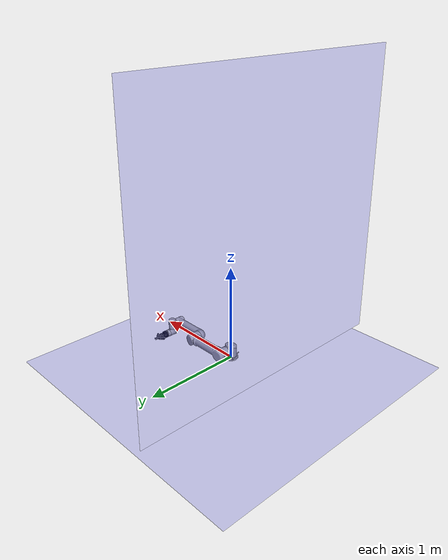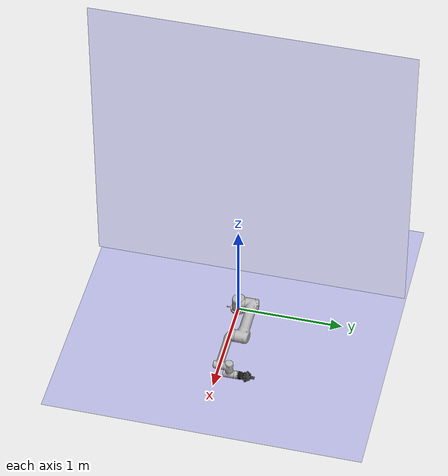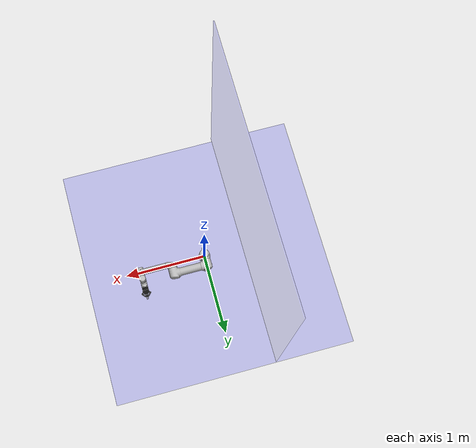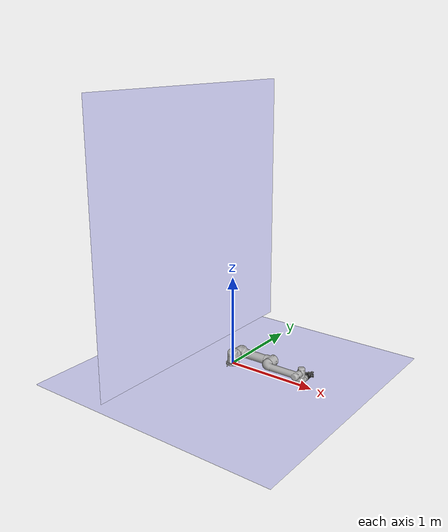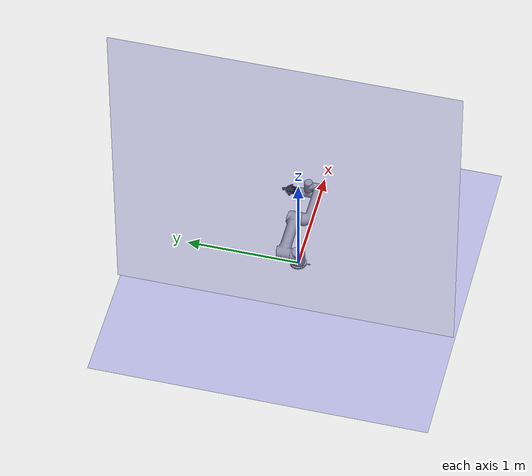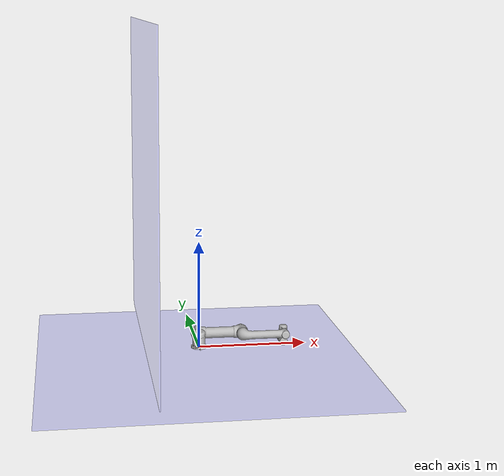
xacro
<?xml version="1.0"?>
<robot xmlns:xacro="http://ros.org/wiki/xacro"
       name="ur5" >

  <!-- common stuff -->
  <xacro:include filename="$(find ur_description)/urdf/common.gazebo.xacro" />

  <!-- ur5 -->
  <xacro:include filename="$(find ur_description)/urdf/ur5.urdf.xacro" />

  <!-- arm -->
  <xacro:ur5_robot prefix="" joint_limited="false"/>

  <link name="world" />

  <joint name="world_joint" type="fixed">
    <parent link="world" />
    <child link = "base_link" />
    <origin xyz="0.0 0.0 0.0" rpy="0.0 0.0 0.0" />
  </joint>

  <!-- Floor -->
  <link name="floor">
    <collision>
      <origin xyz="0.0 0.0 0.0" rpy="0.0 0.0 0.0" />
      <geometry>
        <box size="3 3 0.01"/>
      </geometry>
    </collision>
    <visual>
      <geometry>
        <box size="3 3 0.01"/>
      </geometry>
      <material name="transparent_blue">
        <color rgba="0 0 0.8 0.02"/>
      </material>
    </visual>
  </link>
  <joint name="world_to_floor" type="fixed">
    <origin xyz="0 0 -0.1" rpy="0 0 0" />
    <parent link="world"/>
    <child link = "floor" />
  </joint>

  <!-- Back wall -->
  <link name="back_wall">
    <collision>
      <origin xyz="0.0 0.0 0.0" rpy="0.0 0.0 0.0" />
      <geometry>
        <box size="0.01 3 3"/>
      </geometry>
    </collision>
    <visual>
      <geometry>
        <box size="0.01 3 3"/>
      </geometry>
      <material name="transparent_blue">
        <color rgba="0 0 0.8 0.02"/>
      </material>
    </visual>
  </link>
  <joint name="world_to_back_wall" type="fixed">
    <origin xyz="-0.5 0 1.5" rpy="0 0 0" />
    <parent link="world"/>
    <child link = "back_wall" />
  </joint>

  <!-- attach Temoto frame -->
  <!-- A tool link that will serve as the base end effector, instead of tool0. -->
  <link name="temoto_end_effector" />
  <joint name="ur5-temoto" type="fixed" >
    <origin xyz="0.15 0.0 0.0" rpy="0 0 0"/>
    <parent link="ee_link" />	<!-- end-effector link for UR5 -->
    <child link="temoto_end_effector" />
  </joint>

   <!-- attach gripper. Z is up -->
  <joint name="hand_attach_joint" type="fixed">
    <parent link= "ee_link" />
    <child link = "2_finger_85_gripper_link" />
    <origin xyz="0.09 0 0" rpy="0 0 -1.571" />
  </joint>

  <link name="2_finger_85_gripper_link">
      <visual>
        <origin xyz="0 0 0" rpy="0 0 0" />
        <geometry>
          <mesh filename="package://temoto_support/meshes/2_finger_85_gripper_urdf.stl" scale="0.001 0.001 0.001"/>
        </geometry>
        <material name="black">
          <color rgba="0.05 0.05 0.05 1"/>
        </material>
      </visual>
      <collision>
        <origin xyz="0.0 0.0 0.0" rpy="0.0 0.0 0.0" />
        <geometry>
          <mesh filename="package://temoto_support/meshes/2_finger_85_gripper_urdf.stl" scale="0.00105 0.00105 0.00105"/>
        </geometry>
      </collision>
  </link>

</robot>

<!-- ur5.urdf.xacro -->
<robot xmlns:xacro="http://ros.org/wiki/xacro">

  <xacro:include filename="$(find ur_description)/urdf/ur.transmission.xacro" />
  <xacro:include filename="$(find ur_description)/urdf/ur.gazebo.xacro" />

  <xacro:property name="pi" value="3.14159265" />

  <!-- Inertia parameters -->
  <xacro:property name="base_mass" value="4.0" />  <!-- This mass might be incorrect -->
  <xacro:property name="shoulder_mass" value="3.7000" />
  <xacro:property name="upper_arm_mass" value="8.3930" />
  <xacro:property name="forearm_mass" value="2.2750" />
  <xacro:property name="wrist_1_mass" value="1.2190" />
  <xacro:property name="wrist_2_mass" value="1.2190" />
  <xacro:property name="wrist_3_mass" value="0.1879" />

  <xacro:property name="shoulder_cog" value="0.0 0.00193 -0.02561" />
  <xacro:property name="upper_arm_cog" value="0.0 -0.024201 0.2125" />
  <xacro:property name="forearm_cog" value="0.0 0.0265 0.11993" />
  <xacro:property name="wrist_1_cog" value="0.0 0.110949 0.01634" />
  <xacro:property name="wrist_2_cog" value="0.0 0.0018 0.11099" />
  <xacro:property name="wrist_3_cog" value="0.0 0.001159 0.0" />

  <!-- Kinematic model -->
  <!-- Properties from urcontrol.conf -->
  <xacro:property name="ur5_d1" value="0.089159" />
  <xacro:property name="ur5_a2" value="-0.42500" />
  <xacro:property name="ur5_a3" value="-0.39225" />
  <xacro:property name="ur5_d4" value="0.10915" />
  <xacro:property name="ur5_d5" value="0.09465" />
  <xacro:property name="ur5_d6" value="0.0823" />

  <!-- Arbitrary offsets for shoulder/elbow joints -->
  <xacro:property name="shoulder_offset" value="0.13585" />  <!-- measured from model -->
  <xacro:property name="elbow_offset" value="-0.1197" /> <!-- measured from model -->

  <!-- link lengths used in model -->
  <xacro:property name="shoulder_height" value="${ur5_d1}" />
  <xacro:property name="upper_arm_length" value="${-ur5_a2}" />
  <xacro:property name="forearm_length" value="${-ur5_a3}" />
  <xacro:property name="wrist_1_length" value="${ur5_d4 - elbow_offset - shoulder_offset}" />
  <xacro:property name="wrist_2_length" value="${ur5_d5}" />
  <xacro:property name="wrist_3_length" value="${ur5_d6}" />
  <!--property name="shoulder_height" value="0.089159" /-->
  <!--property name="shoulder_offset" value="0.13585" /-->  <!-- shoulder_offset - elbow_offset + wrist_1_length = 0.10915 -->
  <!--property name="upper_arm_length" value="0.42500" /-->
  <!--property name="elbow_offset" value="0.1197" /-->       <!-- CAD measured -->
  <!--property name="forearm_length" value="0.39225" /-->
  <!--property name="wrist_1_length" value="0.093" /-->     <!-- CAD measured -->
  <!--property name="wrist_2_length" value="0.09465" /-->   <!-- In CAD this distance is 0.930, but in the spec it is 0.09465 -->
  <!--property name="wrist_3_length" value="0.0823" /-->

  <xacro:property name="shoulder_radius" value="0.060" />   <!-- manually measured -->
  <xacro:property name="upper_arm_radius" value="0.054" />  <!-- manually measured -->
  <xacro:property name="elbow_radius" value="0.060" />      <!-- manually measured -->
  <xacro:property name="forearm_radius" value="0.040" />    <!-- manually measured -->
  <xacro:property name="wrist_radius" value="0.045" />      <!-- manually measured -->

  <xacro:macro name="cylinder_inertial" params="radius length mass *origin">
    <inertial>
      <mass value="${mass}" />
      <xacro:insert_block name="origin" />
      <inertia ixx="${0.0833333 * mass * (3 * radius * radius + length * length)}" ixy="0.0" ixz="0.0"
        iyy="${0.0833333 * mass * (3 * radius * radius + length * length)}" iyz="0.0"
        izz="${0.5 * mass * radius * radius}" />
    </inertial>
  </xacro:macro>

  <xacro:macro name="ur5_robot" params="prefix joint_limited">

    <link name="${prefix}base_link" >
      <visual>
        <geometry>
          <mesh filename="package://ur_description/meshes/ur5/visual/base.dae" />
        </geometry>
        <material name="LightGrey">
          <color rgba="0.7 0.7 0.7 1.0"/>
        </material>
      </visual>
      <collision>
        <geometry>
          <mesh filename="package://ur_description/meshes/ur5/collision/base.stl" scale="1.05 1.05 1.05"/>
        </geometry>
      </collision>
      <xacro:cylinder_inertial radius="0.06" length="0.05" mass="${base_mass}">
        <origin xyz="0.0 0.0 0.0" rpy="0 0 0" />
      </xacro:cylinder_inertial>
    </link>

    <joint name="${prefix}shoulder_pan_joint" type="revolute">
      <parent link="${prefix}base_link" />
      <child link = "${prefix}shoulder_link" />
      <origin xyz="0.0 0.0 ${shoulder_height}" rpy="0.0 0.0 0.0" />
      <axis xyz="0 0 1" />
      <xacro:unless value="${joint_limited}">
        <limit lower="${-2.0 * pi}" upper="${2.0 * pi}" effort="150.0" velocity="3.15"/>
      </xacro:unless>
      <xacro:if value="${joint_limited}">
        <limit lower="${-pi}" upper="${pi}" effort="150.0" velocity="3.15"/>
      </xacro:if>
      <dynamics damping="0.0" friction="0.0"/>
    </joint>

    <link name="${prefix}shoulder_link">
      <visual>
        <geometry>
          <mesh filename="package://ur_description/meshes/ur5/visual/shoulder.dae" />
        </geometry>
        <material name="LightGrey">
          <color rgba="0.7 0.7 0.7 1.0"/>
        </material>
      </visual>
      <collision>
        <geometry>
          <mesh filename="package://ur_description/meshes/ur5/collision/shoulder.stl" scale="1.05 1.05 1.05" />
        </geometry>
      </collision>
      <xacro:cylinder_inertial radius="0.06" length="0.15" mass="${shoulder_mass}">
        <origin xyz="0.0 0.0 0.0" rpy="0 0 0" />
      </xacro:cylinder_inertial>
    </link>

    <joint name="${prefix}shoulder_lift_joint" type="revolute">
      <parent link="${prefix}shoulder_link" />
      <child link = "${prefix}upper_arm_link" />
      <origin xyz="0.0 ${shoulder_offset} 0.0" rpy="0.0 ${pi / 2.0} 0.0" />
      <axis xyz="0 1 0" />
      <xacro:unless value="${joint_limited}">
        <limit lower="${-2.0 * pi}" upper="${2.0 * pi}" effort="150.0" velocity="3.15"/>
      </xacro:unless>
      <xacro:if value="${joint_limited}">
        <limit lower="${-pi}" upper="${pi}" effort="150.0" velocity="3.15"/>
      </xacro:if>
      <dynamics damping="0.0" friction="0.0"/>
    </joint>

    <link name="${prefix}upper_arm_link">
      <visual>
        <geometry>
          <mesh filename="package://ur_description/meshes/ur5/visual/upperarm.dae" />
        </geometry>
        <material name="LightGrey">
          <color rgba="0.7 0.7 0.7 1.0"/>
        </material>
      </visual>
      <collision>
        <geometry>
          <mesh filename="package://ur_description/meshes/ur5/collision/upperarm.stl" scale="1.05 1.05 1.05" />
        </geometry>
      </collision>
      <xacro:cylinder_inertial radius="0.06" length="0.56" mass="${upper_arm_mass}">
        <origin xyz="0.0 0.0 0.28" rpy="0 0 0" />
      </xacro:cylinder_inertial>
    </link>

    <joint name="${prefix}elbow_joint" type="revolute">
      <parent link="${prefix}upper_arm_link" />
      <child link = "${prefix}forearm_link" />
      <origin xyz="0.0 ${elbow_offset} ${upper_arm_length}" rpy="0.0 0.0 0.0" />
      <axis xyz="0 1 0" />
      <xacro:unless value="${joint_limited}">
        <limit lower="${-2.0 * pi}" upper="${2.0 * pi}" effort="150.0" velocity="3.15"/>
      </xacro:unless>
      <xacro:if value="${joint_limited}">
        <limit lower="${-pi}" upper="${pi}" effort="150.0" velocity="3.15"/>
      </xacro:if>
      <dynamics damping="0.0" friction="0.0"/>
    </joint>

    <link name="${prefix}forearm_link">
      <visual>
        <geometry>
          <mesh filename="package://ur_description/meshes/ur5/visual/forearm.dae" />
        </geometry>
        <material name="LightGrey">
          <color rgba="0.7 0.7 0.7 1.0"/>
        </material>
      </visual>
      <collision>
        <geometry>
          <mesh filename="package://ur_description/meshes/ur5/collision/forearm.stl" scale="1.05 1.05 1.05" />
        </geometry>
      </collision>
      <xacro:cylinder_inertial radius="0.06" length="0.5" mass="${forearm_mass}">
        <origin xyz="0.0 0.0 0.25" rpy="0 0 0" />
      </xacro:cylinder_inertial>
    </link>

    <joint name="${prefix}wrist_1_joint" type="revolute">
      <parent link="${prefix}forearm_link" />
      <child link = "${prefix}wrist_1_link" />
      <origin xyz="0.0 0.0 ${forearm_length}" rpy="0.0 ${pi / 2.0} 0.0" />
      <axis xyz="0 1 0" />
      <xacro:unless value="${joint_limited}">
        <limit lower="${-2.0 * pi}" upper="${2.0 * pi}" effort="28.0" velocity="3.2"/>
      </xacro:unless>
      <xacro:if value="${joint_limited}">
        <limit lower="${-pi}" upper="${pi}" effort="28.0" velocity="3.2"/>
      </xacro:if>
      <dynamics damping="0.0" friction="0.0"/>
    </joint>

    <link name="${prefix}wrist_1_link">
      <visual>
        <geometry>
          <mesh filename="package://ur_description/meshes/ur5/visual/wrist1.dae" />
        </geometry>
        <material name="LightGrey">
          <color rgba="0.7 0.7 0.7 1.0"/>
        </material>
      </visual>
      <collision>
        <geometry>
          <mesh filename="package://ur_description/meshes/ur5/collision/wrist1.stl" scale="1.05 1.05 1.05" />
        </geometry>
      </collision>
      <xacro:cylinder_inertial radius="0.6" length="0.12" mass="${wrist_1_mass}">
        <origin xyz="0.0 0.0 0.0" rpy="0 0 0" />
      </xacro:cylinder_inertial>
    </link>

    <joint name="${prefix}wrist_2_joint" type="revolute">
      <parent link="${prefix}wrist_1_link" />
      <child link = "${prefix}wrist_2_link" />
      <origin xyz="0.0 ${wrist_1_length} 0.0" rpy="0.0 0.0 0.0" />
      <axis xyz="0 0 1" />
      <xacro:unless value="${joint_limited}">
        <limit lower="${-2.0 * pi}" upper="${2.0 * pi}" effort="28.0" velocity="3.2"/>
      </xacro:unless>
      <xacro:if value="${joint_limited}">
        <limit lower="${-pi}" upper="${pi}" effort="28.0" velocity="3.2"/>
      </xacro:if>
      <dynamics damping="0.0" friction="0.0"/>
    </joint>

    <link name="${prefix}wrist_2_link">
      <visual>
        <geometry>
          <mesh filename="package://ur_description/meshes/ur5/visual/wrist2.dae" />
        </geometry>
        <material name="LightGrey">
          <color rgba="0.7 0.7 0.7 1.0"/>
        </material>
      </visual>
      <collision>
        <geometry>
          <mesh filename="package://ur_description/meshes/ur5/collision/wrist2.stl" scale="1.05 1.05 1.05" />
        </geometry>
      </collision>
      <xacro:cylinder_inertial radius="0.6" length="0.12" mass="${wrist_2_mass}">
        <origin xyz="0.0 0.0 0.0" rpy="0 0 0" />
      </xacro:cylinder_inertial>
    </link>

    <joint name="${prefix}wrist_3_joint" type="revolute">
      <parent link="${prefix}wrist_2_link" />
      <child link = "${prefix}wrist_3_link" />
      <origin xyz="0.0 0.0 ${wrist_2_length}" rpy="0.0 0.0 0.0" />
      <axis xyz="0 1 0" />
      <xacro:unless value="${joint_limited}">
        <limit lower="${-2.0 * pi}" upper="${2.0 * pi}" effort="28.0" velocity="3.2"/>
      </xacro:unless>
      <xacro:if value="${joint_limited}">
        <limit lower="${-pi}" upper="${pi}" effort="28.0" velocity="3.2"/>
      </xacro:if>
      <dynamics damping="0.0" friction="0.0"/>
    </joint>

    <link name="${prefix}wrist_3_link">
      <visual>
        <geometry>
          <mesh filename="package://ur_description/meshes/ur5/visual/wrist3.dae" />
        </geometry>
        <material name="LightGrey">
          <color rgba="0.7 0.7 0.7 1.0"/>
        </material>
      </visual>
      <collision>
        <geometry>
          <mesh filename="package://ur_description/meshes/ur5/collision/wrist3.stl" scale="1.05 1.05 1.05"/>
        </geometry>
      </collision>
      <xacro:cylinder_inertial radius="0.6" length="0.12" mass="${wrist_3_mass}">
        <origin xyz="0.0 0.0 0.0" rpy="0 0 0" />
      </xacro:cylinder_inertial>
    </link>

    <joint name="${prefix}ee_fixed_joint" type="fixed">
      <parent link="${prefix}wrist_3_link" />
      <child link = "${prefix}ee_link" />
      <origin xyz="0.0 ${wrist_3_length} 0.0" rpy="0.0 0.0 ${pi/2.0}" />
    </joint>

    <link name="${prefix}ee_link">
      <collision>
        <geometry>
          <box size="0.01 0.01 0.01"/>
        </geometry>
        <origin rpy="0 0 0" xyz="-0.01 0 0"/>
      </collision>
    </link>

    <xacro:ur_arm_transmission prefix="${prefix}" />
    <xacro:ur_arm_gazebo prefix="${prefix}" />

    <!-- ROS base_link to UR 'Base' Coordinates transform -->
    <link name="${prefix}base"/>
    <joint name="${prefix}base_link-base_fixed_joint" type="fixed">
      <!-- NOTE: this rotation is only needed as long as base_link itself is
                 not corrected wrt the real robot (ie: rotated over 180
                 degrees)
      -->
      <origin xyz="0 0 0" rpy="0 0 ${-pi}"/>
      <parent link="${prefix}base_link"/>
      <child link="${prefix}base"/>
    </joint>

    <!-- Frame coincident with all-zeros TCP on UR controller -->
    <link name="${prefix}tool0"/>
    <joint name="${prefix}wrist_3_link-tool0_fixed_joint" type="fixed">
      <origin xyz="0 ${wrist_3_length} 0" rpy="${pi/-2.0} 0 0"/>
      <parent link="${prefix}wrist_3_link"/>
      <child link="${prefix}tool0"/>
    </joint>

  </xacro:macro>
</robot>
